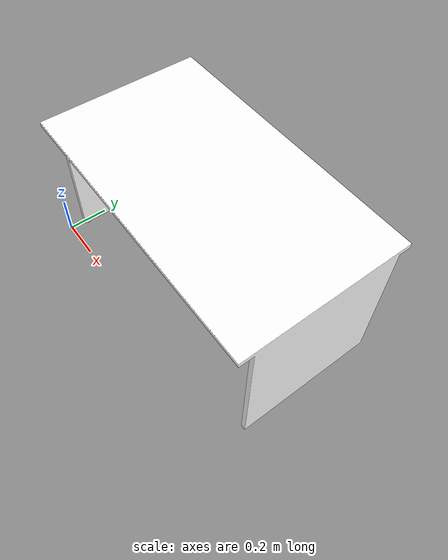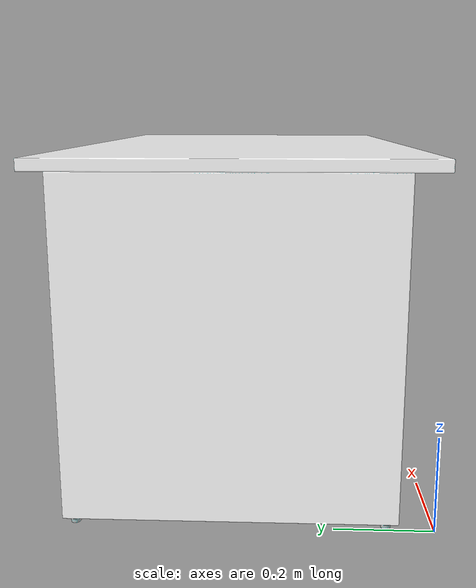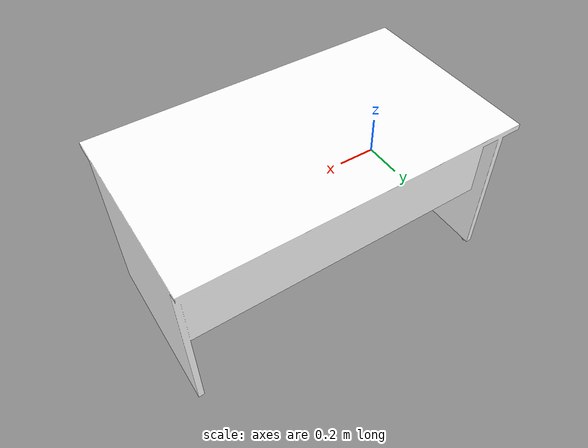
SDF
<?xml version="1.0"?>

<sdf version="1.4">
    <model name="desk2">
        <static>true</static>
        <link name="desk2_link">

            <visual name="desk2_mesh">
                <geometry>
                    <mesh>
                        <uri>model://desk2/meshes/model.dae</uri>
                    </mesh>
                </geometry>
            </visual>

            <collision name="desk2_collison">
                <pose>0.704810 0.399534 0.372136</pose>
                <geometry>
                    <box>
                        <size>1.406 0.8 0.7347</size>
                    </box>
                </geometry>
            </collision>
        </link>
    </model>
</sdf>
